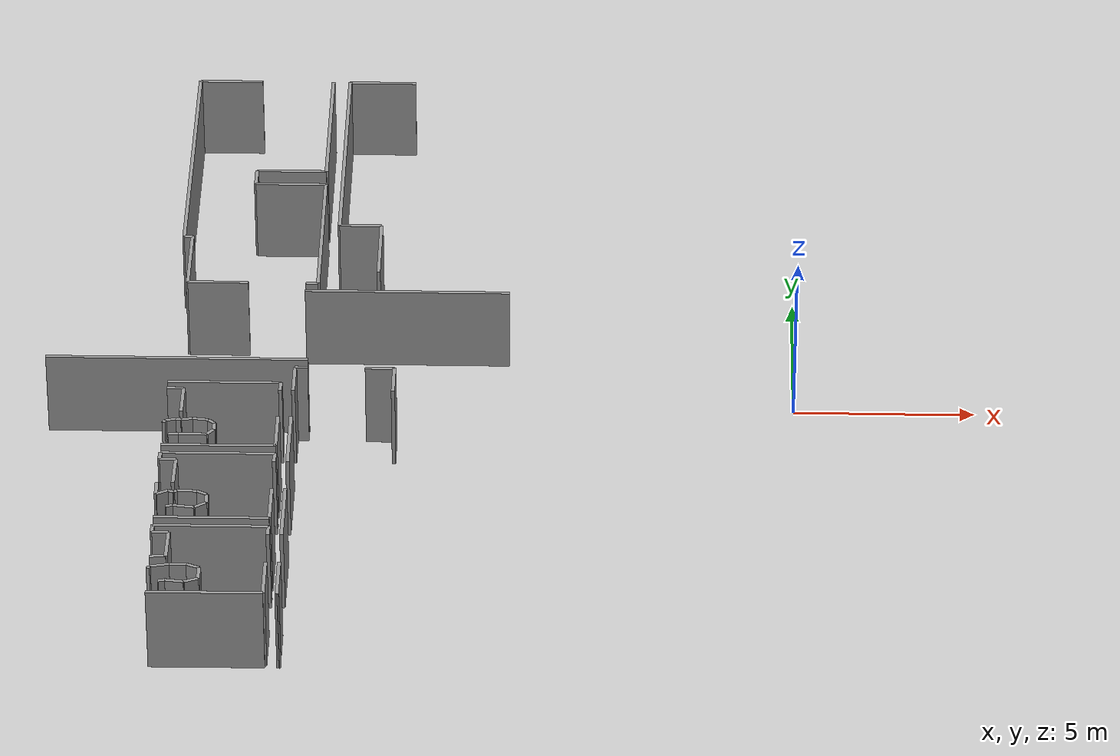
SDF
<sdf version="1.6">
 <world name="default">
  <model name="ground_plane">
   <static>1</static>
   <link name="link">
    <collision name="collision">
     <geometry><plane><normal>0 0 1</normal><size>100 100</size></plane></geometry>
     <surface><friction><ode><mu>100</mu><mu2>50</mu2></ode></friction></surface>
    </collision>
    <visual name="visual">
     <cast_shadows>0</cast_shadows>
     <geometry><plane><normal>0 0 1</normal><size>100 100</size></plane></geometry>
     <material>
      <script><uri>file://media/materials/scripts/gazebo.material</uri><name>Gazebo/Grey</name></script>
     </material>
    </visual>
   </link>
  </model>
  <model name="0510034691_Layout1">
   <static>1</static>
   <link name="Wall_56">
    <collision name="Wall_56_Collision">
     <geometry><box><size>5.70095833651 0.1 2.5</size></box></geometry>
     <pose>2.85047916826 0 1.25 0 0 0</pose>
    </collision>
    <visual name="Wall_56_Visual">
     <pose>2.85047916826 0 1.25 0 0 0</pose>
     <geometry><box><size>5.70095833651 0.1 2.5</size></box></geometry>
     <material>
      <script><uri>file://media/materials/scripts/gazebo.material</uri><name>Gazebo/Grey</name></script>
      <ambient>1 1 1 1</ambient>
     </material>
    </visual>
    <pose>42.838531737 -10.374437581 0 0 0 0.0</pose>
   </link>
   <link name="Wall_60">
    <collision name="Wall_60_Collision">
     <geometry><box><size>7.22578103155 0.1 2.5</size></box></geometry>
     <pose>3.61289051577 0 1.25 0 0 0</pose>
    </collision>
    <visual name="Wall_60_Visual">
     <pose>3.61289051577 0 1.25 0 0 0</pose>
     <geometry><box><size>7.22578103155 0.1 2.5</size></box></geometry>
     <material>
      <script><uri>file://media/materials/scripts/gazebo.material</uri><name>Gazebo/Grey</name></script>
      <ambient>1 1 1 1</ambient>
     </material>
    </visual>
    <pose>43.0745570553 -13.6054551463 0 0 0 3.14159265359</pose>
   </link>
   <link name="Wall_66">
    <collision name="Wall_66_Collision">
     <geometry><box><size>2.19311624596 0.1 2.5</size></box></geometry>
     <pose>1.09655812298 0 1.25 0 0 0</pose>
    </collision>
    <visual name="Wall_66_Visual">
     <pose>1.09655812298 0 1.25 0 0 0</pose>
     <geometry><box><size>2.19311624596 0.1 2.5</size></box></geometry>
     <material>
      <script><uri>file://media/materials/scripts/gazebo.material</uri><name>Gazebo/Grey</name></script>
      <ambient>1 1 1 1</ambient>
     </material>
    </visual>
    <pose>39.5428201022 -10.0233864613 0 0 0 1.57079632679</pose>
   </link>
   <link name="Wall_67">
    <collision name="Wall_67_Collision">
     <geometry><box><size>0.22941610107 0.1 2.5</size></box></geometry>
     <pose>0.114708050535 0 1.25 0 0 0</pose>
    </collision>
    <visual name="Wall_67_Visual">
     <pose>0.114708050535 0 1.25 0 0 0</pose>
     <geometry><box><size>0.22941610107 0.1 2.5</size></box></geometry>
     <material>
      <script><uri>file://media/materials/scripts/gazebo.material</uri><name>Gazebo/Grey</name></script>
      <ambient>1 1 1 1</ambient>
     </material>
    </visual>
    <pose>39.5428201022 -7.83027021531 0 0 0 3.14159265359</pose>
   </link>
   <link name="Wall_68">
    <collision name="Wall_68_Collision">
     <geometry><box><size>7.81056966369 0.1 2.5</size></box></geometry>
     <pose>3.90528483185 0 1.25 0 0 0</pose>
    </collision>
    <visual name="Wall_68_Visual">
     <pose>3.90528483185 0 1.25 0 0 0</pose>
     <geometry><box><size>7.81056966369 0.1 2.5</size></box></geometry>
     <material>
      <script><uri>file://media/materials/scripts/gazebo.material</uri><name>Gazebo/Grey</name></script>
      <ambient>1 1 1 1</ambient>
     </material>
    </visual>
    <pose>39.3134040011 -7.83027021531 0 0 0 1.57079632679</pose>
   </link>
   <link name="Wall_69">
    <collision name="Wall_69_Collision">
     <geometry><box><size>1.81143394596 0.1 2.5</size></box></geometry>
     <pose>0.905716972978 0 1.25 0 0 0</pose>
    </collision>
    <visual name="Wall_69_Visual">
     <pose>0.905716972978 0 1.25 0 0 0</pose>
     <geometry><box><size>1.81143394596 0.1 2.5</size></box></geometry>
     <material>
      <script><uri>file://media/materials/scripts/gazebo.material</uri><name>Gazebo/Grey</name></script>
      <ambient>1 1 1 1</ambient>
     </material>
    </visual>
    <pose>39.3134040011 -0.0197005516154 0 0 0 0.0</pose>
   </link>
   <link name="Wall_70">
    <collision name="Wall_70_Collision">
     <geometry><box><size>4.53061847022 0.1 2.5</size></box></geometry>
     <pose>2.26530923511 0 1.25 0 0 0</pose>
    </collision>
    <visual name="Wall_70_Visual">
     <pose>2.26530923511 0 1.25 0 0 0</pose>
     <geometry><box><size>4.53061847022 0.1 2.5</size></box></geometry>
     <material>
      <script><uri>file://media/materials/scripts/gazebo.material</uri><name>Gazebo/Grey</name></script>
      <ambient>1 1 1 1</ambient>
     </material>
    </visual>
    <pose>43.1769999237 -0.0197005516154 0 0 0 -1.57079632679</pose>
   </link>
   <link name="Wall_71">
    <collision name="Wall_71_Collision">
     <geometry><box><size>1.98060448918 0.1 2.5</size></box></geometry>
     <pose>0.990302244592 0 1.25 0 0 0</pose>
    </collision>
    <visual name="Wall_71_Visual">
     <pose>0.990302244592 0 1.25 0 0 0</pose>
     <geometry><box><size>1.98060448918 0.1 2.5</size></box></geometry>
     <material>
      <script><uri>file://media/materials/scripts/gazebo.material</uri><name>Gazebo/Grey</name></script>
      <ambient>1 1 1 1</ambient>
     </material>
    </visual>
    <pose>43.1769999237 -4.55031902184 0 0 0 3.14159265359</pose>
   </link>
   <link name="Wall_72">
    <collision name="Wall_72_Collision">
     <geometry><box><size>0.651897607972 0.1 2.5</size></box></geometry>
     <pose>0.325948803986 0 1.25 0 0 0</pose>
    </collision>
    <visual name="Wall_72_Visual">
     <pose>0.325948803986 0 1.25 0 0 0</pose>
     <geometry><box><size>0.651897607972 0.1 2.5</size></box></geometry>
     <material>
      <script><uri>file://media/materials/scripts/gazebo.material</uri><name>Gazebo/Grey</name></script>
      <ambient>1 1 1 1</ambient>
     </material>
    </visual>
    <pose>41.1963954346 -4.55031902184 0 0 0 -1.57079632679</pose>
   </link>
   <link name="Wall_73">
    <collision name="Wall_73_Collision">
     <geometry><box><size>1.98899311116 0.1 2.5</size></box></geometry>
     <pose>0.994496555581 0 1.25 0 0 0</pose>
    </collision>
    <visual name="Wall_73_Visual">
     <pose>0.994496555581 0 1.25 0 0 0</pose>
     <geometry><box><size>1.98899311116 0.1 2.5</size></box></geometry>
     <material>
      <script><uri>file://media/materials/scripts/gazebo.material</uri><name>Gazebo/Grey</name></script>
      <ambient>1 1 1 1</ambient>
     </material>
    </visual>
    <pose>41.1963954346 -5.20221662981 0 0 0 0.0</pose>
   </link>
   <link name="Wall_74">
    <collision name="Wall_74_Collision">
     <geometry><box><size>4.80922240016 0.1 2.5</size></box></geometry>
     <pose>2.40461120008 0 1.25 0 0 0</pose>
    </collision>
    <visual name="Wall_74_Visual">
     <pose>2.40461120008 0 1.25 0 0 0</pose>
     <geometry><box><size>4.80922240016 0.1 2.5</size></box></geometry>
     <material>
      <script><uri>file://media/materials/scripts/gazebo.material</uri><name>Gazebo/Grey</name></script>
      <ambient>1 1 1 1</ambient>
     </material>
    </visual>
    <pose>43.1853885457 -5.20221662981 0 0 0 -1.57079632679</pose>
   </link>
   <link name="Wall_75">
    <collision name="Wall_75_Collision">
     <geometry><box><size>0.339484989451 0.1 2.5</size></box></geometry>
     <pose>0.169742494725 0 1.25 0 0 0</pose>
    </collision>
    <visual name="Wall_75_Visual">
     <pose>0.169742494725 0 1.25 0 0 0</pose>
     <geometry><box><size>0.339484989451 0.1 2.5</size></box></geometry>
     <material>
      <script><uri>file://media/materials/scripts/gazebo.material</uri><name>Gazebo/Grey</name></script>
      <ambient>1 1 1 1</ambient>
     </material>
    </visual>
    <pose>43.1853885457 -10.01143903 0 0 0 3.14159265359</pose>
   </link>
   <link name="Wall_76">
    <collision name="Wall_76_Collision">
     <geometry><box><size>1.69339988343 0.1 2.5</size></box></geometry>
     <pose>0.846699941716 0 1.25 0 0 0</pose>
    </collision>
    <visual name="Wall_76_Visual">
     <pose>0.846699941716 0 1.25 0 0 0</pose>
     <geometry><box><size>1.69339988343 0.1 2.5</size></box></geometry>
     <material>
      <script><uri>file://media/materials/scripts/gazebo.material</uri><name>Gazebo/Grey</name></script>
      <ambient>1 1 1 1</ambient>
     </material>
    </visual>
    <pose>41.2361778388 -10.01143903 0 0 0 -3.13453730267</pose>
   </link>
   <link name="Wall_79">
    <collision name="Wall_79_Collision">
     <geometry><box><size>0.281947760479 0.1 2.5</size></box></geometry>
     <pose>0.140973880239 0 1.25 0 0 0</pose>
    </collision>
    <visual name="Wall_79_Visual">
     <pose>0.140973880239 0 1.25 0 0 0</pose>
     <geometry><box><size>0.281947760479 0.1 2.5</size></box></geometry>
     <material>
      <script><uri>file://media/materials/scripts/gazebo.material</uri><name>Gazebo/Grey</name></script>
      <ambient>1 1 1 1</ambient>
     </material>
    </visual>
    <pose>39.4377081268 -17.0616945016 0 0 0 -0.016680148091</pose>
   </link>
   <link name="Wall_80">
    <collision name="Wall_80_Collision">
     <geometry><box><size>0.774101299165 0.1 2.5</size></box></geometry>
     <pose>0.387050649583 0 1.25 0 0 0</pose>
    </collision>
    <visual name="Wall_80_Visual">
     <pose>0.387050649583 0 1.25 0 0 0</pose>
     <geometry><box><size>0.774101299165 0.1 2.5</size></box></geometry>
     <material>
      <script><uri>file://media/materials/scripts/gazebo.material</uri><name>Gazebo/Grey</name></script>
      <ambient>1 1 1 1</ambient>
     </material>
    </visual>
    <pose>39.7196166654 -17.066397214 0 0 0 -0.0124788267691</pose>
   </link>
   <link name="Wall_81">
    <collision name="Wall_81_Collision">
     <geometry><box><size>0.271600207622 0.1 2.5</size></box></geometry>
     <pose>0.135800103811 0 1.25 0 0 0</pose>
    </collision>
    <visual name="Wall_81_Visual">
     <pose>0.135800103811 0 1.25 0 0 0</pose>
     <geometry><box><size>0.271600207622 0.1 2.5</size></box></geometry>
     <material>
      <script><uri>file://media/materials/scripts/gazebo.material</uri><name>Gazebo/Grey</name></script>
      <ambient>1 1 1 1</ambient>
     </material>
    </visual>
    <pose>40.4936576934 -17.0760568393 0 0 0 0.885165594328</pose>
   </link>
   <link name="Wall_82">
    <collision name="Wall_82_Collision">
     <geometry><box><size>0.281949909073 0.1 2.5</size></box></geometry>
     <pose>0.140974954536 0 1.25 0 0 0</pose>
    </collision>
    <visual name="Wall_82_Visual">
     <pose>0.140974954536 0 1.25 0 0 0</pose>
     <geometry><box><size>0.281949909073 0.1 2.5</size></box></geometry>
     <material>
      <script><uri>file://media/materials/scripts/gazebo.material</uri><name>Gazebo/Grey</name></script>
      <ambient>1 1 1 1</ambient>
     </material>
    </visual>
    <pose>40.6656244439 -16.8658328885 0 0 0 1.55366545092</pose>
   </link>
   <link name="Wall_83">
    <collision name="Wall_83_Collision">
     <geometry><box><size>0.236930907726 0.1 2.5</size></box></geometry>
     <pose>0.118465453863 0 1.25 0 0 0</pose>
    </collision>
    <visual name="Wall_83_Visual">
     <pose>0.118465453863 0 1.25 0 0 0</pose>
     <geometry><box><size>0.236930907726 0.1 2.5</size></box></geometry>
     <material>
      <script><uri>file://media/materials/scripts/gazebo.material</uri><name>Gazebo/Grey</name></script>
      <ambient>1 1 1 1</ambient>
     </material>
    </visual>
    <pose>40.6704542566 -16.5839243499 0 0 0 2.41312379024</pose>
   </link>
   <link name="Wall_84">
    <collision name="Wall_84_Collision">
     <geometry><box><size>0.433910503499 0.1 2.5</size></box></geometry>
     <pose>0.216955251749 0 1.25 0 0 0</pose>
    </collision>
    <visual name="Wall_84_Visual">
     <pose>0.216955251749 0 1.25 0 0 0</pose>
     <geometry><box><size>0.433910503499 0.1 2.5</size></box></geometry>
     <material>
      <script><uri>file://media/materials/scripts/gazebo.material</uri><name>Gazebo/Grey</name></script>
      <ambient>1 1 1 1</ambient>
     </material>
    </visual>
    <pose>40.4936576934 -16.4261928366 0 0 0 3.00909919105</pose>
   </link>
   <link name="Wall_85">
    <collision name="Wall_85_Collision">
     <geometry><box><size>0.313026007147 0.1 2.5</size></box></geometry>
     <pose>0.156513003573 0 1.25 0 0 0</pose>
    </collision>
    <visual name="Wall_85_Visual">
     <pose>0.156513003573 0 1.25 0 0 0</pose>
     <geometry><box><size>0.313026007147 0.1 2.5</size></box></geometry>
     <material>
      <script><uri>file://media/materials/scripts/gazebo.material</uri><name>Gazebo/Grey</name></script>
      <ambient>1 1 1 1</ambient>
     </material>
    </visual>
    <pose>40.0635501665 -16.3688705864 0 0 0 -2.92635890956</pose>
   </link>
   <link name="Wall_86">
    <collision name="Wall_86_Collision">
     <geometry><box><size>0.147090728379 0.1 2.5</size></box></geometry>
     <pose>0.0735453641894 0 1.25 0 0 0</pose>
    </collision>
    <visual name="Wall_86_Visual">
     <pose>0.0735453641894 0 1.25 0 0 0</pose>
     <geometry><box><size>0.147090728379 0.1 2.5</size></box></geometry>
     <material>
      <script><uri>file://media/materials/scripts/gazebo.material</uri><name>Gazebo/Grey</name></script>
      <ambient>1 1 1 1</ambient>
     </material>
    </visual>
    <pose>39.7577467653 -16.4357253616 0 0 0 2.91233267061</pose>
   </link>
   <link name="Wall_87">
    <collision name="Wall_87_Collision">
     <geometry><box><size>0.295563127284 0.1 2.5</size></box></geometry>
     <pose>0.147781563642 0 1.25 0 0 0</pose>
    </collision>
    <visual name="Wall_87_Visual">
     <pose>0.147781563642 0 1.25 0 0 0</pose>
     <geometry><box><size>0.295563127284 0.1 2.5</size></box></geometry>
     <material>
      <script><uri>file://media/materials/scripts/gazebo.material</uri><name>Gazebo/Grey</name></script>
      <ambient>1 1 1 1</ambient>
     </material>
    </visual>
    <pose>39.61450469 -16.402297974 0 0 0 -2.89661399046</pose>
   </link>
   <link name="Wall_88">
    <collision name="Wall_88_Collision">
     <geometry><box><size>0.102563904907 0.1 2.5</size></box></geometry>
     <pose>0.0512819524537 0 1.25 0 0 0</pose>
    </collision>
    <visual name="Wall_88_Visual">
     <pose>0.0512819524537 0 1.25 0 0 0</pose>
     <geometry><box><size>0.102563904907 0.1 2.5</size></box></geometry>
     <material>
      <script><uri>file://media/materials/scripts/gazebo.material</uri><name>Gazebo/Grey</name></script>
      <ambient>1 1 1 1</ambient>
     </material>
    </visual>
    <pose>39.3277663387 -16.4739825618 0 0 0 -2.05550512273</pose>
   </link>
   <link name="Wall_91">
    <collision name="Wall_91_Collision">
     <geometry><box><size>1.04642760881 0.1 2.5</size></box></geometry>
     <pose>0.523213804405 0 1.25 0 0 0</pose>
    </collision>
    <visual name="Wall_91_Visual">
     <pose>0.523213804405 0 1.25 0 0 0</pose>
     <geometry><box><size>1.04642760881 0.1 2.5</size></box></geometry>
     <material>
      <script><uri>file://media/materials/scripts/gazebo.material</uri><name>Gazebo/Grey</name></script>
      <ambient>1 1 1 1</ambient>
     </material>
    </visual>
    <pose>39.7291491904 -16.043875035 0 0 0 1.56630224798</pose>
   </link>
   <link name="Wall_92">
    <collision name="Wall_92_Collision">
     <geometry><box><size>0.453875289153 0.1 2.5</size></box></geometry>
     <pose>0.226937644577 0 1.25 0 0 0</pose>
    </collision>
    <visual name="Wall_92_Visual">
     <pose>0.226937644577 0 1.25 0 0 0</pose>
     <geometry><box><size>0.453875289153 0.1 2.5</size></box></geometry>
     <material>
      <script><uri>file://media/materials/scripts/gazebo.material</uri><name>Gazebo/Grey</name></script>
      <ambient>1 1 1 1</ambient>
     </material>
    </visual>
    <pose>39.7338519027 -14.9974579933 0 0 0 3.14159265359</pose>
   </link>
   <link name="Wall_94">
    <collision name="Wall_94_Collision">
     <geometry><box><size>3.09629121228 0.1 2.5</size></box></geometry>
     <pose>1.54814560614 0 1.25 0 0 0</pose>
    </collision>
    <visual name="Wall_94_Visual">
     <pose>1.54814560614 0 1.25 0 0 0</pose>
     <geometry><box><size>3.09629121228 0.1 2.5</size></box></geometry>
     <material>
      <script><uri>file://media/materials/scripts/gazebo.material</uri><name>Gazebo/Grey</name></script>
      <ambient>1 1 1 1</ambient>
     </material>
    </visual>
    <pose>39.2799766135 -14.6964844048 0 0 0 0.0</pose>
   </link>
   <link name="Wall_95">
    <collision name="Wall_95_Collision">
     <geometry><box><size>0.334528076464 0.1 2.5</size></box></geometry>
     <pose>0.167264038232 0 1.25 0 0 0</pose>
    </collision>
    <visual name="Wall_95_Visual">
     <pose>0.167264038232 0 1.25 0 0 0</pose>
     <geometry><box><size>0.334528076464 0.1 2.5</size></box></geometry>
     <material>
      <script><uri>file://media/materials/scripts/gazebo.material</uri><name>Gazebo/Grey</name></script>
      <ambient>1 1 1 1</ambient>
     </material>
    </visual>
    <pose>42.3762678258 -14.6964844048 0 0 0 -1.57079632679</pose>
   </link>
   <link name="Wall_96">
    <collision name="Wall_96_Collision">
     <geometry><box><size>1.31663234958 0.1 2.5</size></box></geometry>
     <pose>0.658316174788 0 1.25 0 0 0</pose>
    </collision>
    <visual name="Wall_96_Visual">
     <pose>0.658316174788 0 1.25 0 0 0</pose>
     <geometry><box><size>1.31663234958 0.1 2.5</size></box></geometry>
     <material>
      <script><uri>file://media/materials/scripts/gazebo.material</uri><name>Gazebo/Grey</name></script>
      <ambient>1 1 1 1</ambient>
     </material>
    </visual>
    <pose>42.3762678258 -16.2276621165 0 0 0 -1.57079632679</pose>
   </link>
   <link name="Wall_97">
    <collision name="Wall_97_Collision">
     <geometry><box><size>3.10117962837 0.1 2.5</size></box></geometry>
     <pose>1.55058981419 0 1.25 0 0 0</pose>
    </collision>
    <visual name="Wall_97_Visual">
     <pose>1.55058981419 0 1.25 0 0 0</pose>
     <geometry><box><size>3.10117962837 0.1 2.5</size></box></geometry>
     <material>
      <script><uri>file://media/materials/scripts/gazebo.material</uri><name>Gazebo/Grey</name></script>
      <ambient>1 1 1 1</ambient>
     </material>
    </visual>
    <pose>42.3762678258 -17.5442944661 0 0 0 -3.1354449381</pose>
   </link>
   <link name="Wall_100">
    <collision name="Wall_100_Collision">
     <geometry><box><size>0.196831188568 0.1 2.5</size></box></geometry>
     <pose>0.0984155942839 0 1.25 0 0 0</pose>
    </collision>
    <visual name="Wall_100_Visual">
     <pose>0.0984155942839 0 1.25 0 0 0</pose>
     <geometry><box><size>0.196831188568 0.1 2.5</size></box></geometry>
     <material>
      <script><uri>file://media/materials/scripts/gazebo.material</uri><name>Gazebo/Grey</name></script>
      <ambient>1 1 1 1</ambient>
     </material>
    </visual>
    <pose>39.5706550751 -20.2868654516 0 0 0 0.237931011607</pose>
   </link>
   <link name="Wall_101">
    <collision name="Wall_101_Collision">
     <geometry><box><size>0.581813543651 0.1 2.5</size></box></geometry>
     <pose>0.290906771825 0 1.25 0 0 0</pose>
    </collision>
    <visual name="Wall_101_Visual">
     <pose>0.290906771825 0 1.25 0 0 0</pose>
     <geometry><box><size>0.581813543651 0.1 2.5</size></box></geometry>
     <material>
      <script><uri>file://media/materials/scripts/gazebo.material</uri><name>Gazebo/Grey</name></script>
      <ambient>1 1 1 1</ambient>
     </material>
    </visual>
    <pose>39.7619410763 -20.24047383 0 0 0 -0.136521426702</pose>
   </link>
   <link name="Wall_102">
    <collision name="Wall_102_Collision">
     <geometry><box><size>0.370527118994 0.1 2.5</size></box></geometry>
     <pose>0.185263559497 0 1.25 0 0 0</pose>
    </collision>
    <visual name="Wall_102_Visual">
     <pose>0.185263559497 0 1.25 0 0 0</pose>
     <geometry><box><size>0.370527118994 0.1 2.5</size></box></geometry>
     <material>
      <script><uri>file://media/materials/scripts/gazebo.material</uri><name>Gazebo/Grey</name></script>
      <ambient>1 1 1 1</ambient>
     </material>
    </visual>
    <pose>40.3383410865 -20.3196573375 0 0 0 0.585909561223</pose>
   </link>
   <link name="Wall_103">
    <collision name="Wall_103_Collision">
     <geometry><box><size>0.360583644729 0.1 2.5</size></box></geometry>
     <pose>0.180291822365 0 1.25 0 0 0</pose>
    </collision>
    <visual name="Wall_103_Visual">
     <pose>0.180291822365 0 1.25 0 0 0</pose>
     <geometry><box><size>0.360583644729 0.1 2.5</size></box></geometry>
     <material>
      <script><uri>file://media/materials/scripts/gazebo.material</uri><name>Gazebo/Grey</name></script>
      <ambient>1 1 1 1</ambient>
     </material>
    </visual>
    <pose>40.6470677953 -20.1147716007 0 0 0 1.57079632679</pose>
   </link>
   <link name="Wall_104">
    <collision name="Wall_104_Collision">
     <geometry><box><size>0.309243781943 0.1 2.5</size></box></geometry>
     <pose>0.154621890971 0 1.25 0 0 0</pose>
    </collision>
    <visual name="Wall_104_Visual">
     <pose>0.154621890971 0 1.25 0 0 0</pose>
     <geometry><box><size>0.309243781943 0.1 2.5</size></box></geometry>
     <material>
      <script><uri>file://media/materials/scripts/gazebo.material</uri><name>Gazebo/Grey</name></script>
      <ambient>1 1 1 1</ambient>
     </material>
    </visual>
    <pose>40.6470677953 -19.754187956 0 0 0 2.65441564994</pose>
   </link>
   <link name="Wall_105">
    <collision name="Wall_105_Collision">
     <geometry><box><size>0.53825380865 0.1 2.5</size></box></geometry>
     <pose>0.269126904325 0 1.25 0 0 0</pose>
    </collision>
    <visual name="Wall_105_Visual">
     <pose>0.269126904325 0 1.25 0 0 0</pose>
     <geometry><box><size>0.53825380865 0.1 2.5</size></box></geometry>
     <material>
      <script><uri>file://media/materials/scripts/gazebo.material</uri><name>Gazebo/Grey</name></script>
      <ambient>1 1 1 1</ambient>
     </material>
    </visual>
    <pose>40.3738020794 -19.6094206767 0 0 0 3.1212836843</pose>
   </link>
   <link name="Wall_106">
    <collision name="Wall_106_Collision">
     <geometry><box><size>0.107082464279 0.1 2.5</size></box></geometry>
     <pose>0.0535412321396 0 1.25 0 0 0</pose>
    </collision>
    <visual name="Wall_106_Visual">
     <pose>0.0535412321396 0 1.25 0 0 0</pose>
     <geometry><box><size>0.107082464279 0.1 2.5</size></box></geometry>
     <material>
      <script><uri>file://media/materials/scripts/gazebo.material</uri><name>Gazebo/Grey</name></script>
      <ambient>1 1 1 1</ambient>
     </material>
    </visual>
    <pose>39.8356592694 -19.598490048 0 0 0 -2.4824233114</pose>
   </link>
   <link name="Wall_107">
    <collision name="Wall_107_Collision">
     <geometry><box><size>0.160415827255 0.1 2.5</size></box></geometry>
     <pose>0.0802079136274 0 1.25 0 0 0</pose>
    </collision>
    <visual name="Wall_107_Visual">
     <pose>0.0802079136274 0 1.25 0 0 0</pose>
     <geometry><box><size>0.160415827255 0.1 2.5</size></box></geometry>
     <material>
      <script><uri>file://media/materials/scripts/gazebo.material</uri><name>Gazebo/Grey</name></script>
      <ambient>1 1 1 1</ambient>
     </material>
    </visual>
    <pose>39.7510104476 -19.6640738199 0 0 0 2.73857352429</pose>
   </link>
   <link name="Wall_108">
    <collision name="Wall_108_Collision">
     <geometry><box><size>0.356808282887 0.1 2.5</size></box></geometry>
     <pose>0.178404141443 0 1.25 0 0 0</pose>
    </collision>
    <visual name="Wall_108_Visual">
     <pose>0.178404141443 0 1.25 0 0 0</pose>
     <geometry><box><size>0.356808282887 0.1 2.5</size></box></geometry>
     <material>
      <script><uri>file://media/materials/scripts/gazebo.material</uri><name>Gazebo/Grey</name></script>
      <ambient>1 1 1 1</ambient>
     </material>
    </visual>
    <pose>39.603446961 -19.601159155 0 0 0 -2.69833737357</pose>
   </link>
   <link name="Wall_109">
    <collision name="Wall_109_Collision">
     <geometry><box><size>0.497224365191 0.1 2.5</size></box></geometry>
     <pose>0.248612182596 0 1.25 0 0 0</pose>
    </collision>
    <visual name="Wall_109_Visual">
     <pose>0.248612182596 0 1.25 0 0 0</pose>
     <geometry><box><size>0.497224365191 0.1 2.5</size></box></geometry>
     <material>
      <script><uri>file://media/materials/scripts/gazebo.material</uri><name>Gazebo/Grey</name></script>
      <ambient>1 1 1 1</ambient>
     </material>
    </visual>
    <pose>39.2811205165 -19.754187956 0 0 0 1.57641998939</pose>
   </link>
   <link name="Wall_111">
    <collision name="Wall_111_Collision">
     <geometry><box><size>1.04641840015 0.1 2.5</size></box></geometry>
     <pose>0.523209200074 0 1.25 0 0 0</pose>
    </collision>
    <visual name="Wall_111_Visual">
     <pose>0.523209200074 0 1.25 0 0 0</pose>
     <geometry><box><size>1.04641840015 0.1 2.5</size></box></geometry>
     <material>
      <script><uri>file://media/materials/scripts/gazebo.material</uri><name>Gazebo/Grey</name></script>
      <ambient>1 1 1 1</ambient>
     </material>
    </visual>
    <pose>39.7044917258 -19.2569714533 0 0 0 1.55512705539</pose>
   </link>
   <link name="Wall_112">
    <collision name="Wall_112_Collision">
     <geometry><box><size>0.439902974288 0.1 2.5</size></box></geometry>
     <pose>0.219951487144 0 1.25 0 0 0</pose>
    </collision>
    <visual name="Wall_112_Visual">
     <pose>0.219951487144 0 1.25 0 0 0</pose>
     <geometry><box><size>0.439902974288 0.1 2.5</size></box></geometry>
     <material>
      <script><uri>file://media/materials/scripts/gazebo.material</uri><name>Gazebo/Grey</name></script>
      <ambient>1 1 1 1</ambient>
     </material>
    </visual>
    <pose>39.7208876687 -18.210681512 0 0 0 3.1167422789</pose>
   </link>
   <link name="Wall_113">
    <collision name="Wall_113_Collision">
     <geometry><box><size>0.281453205552 0.1 2.5</size></box></geometry>
     <pose>0.140726602776 0 1.25 0 0 0</pose>
    </collision>
    <visual name="Wall_113_Visual">
     <pose>0.140726602776 0 1.25 0 0 0</pose>
     <geometry><box><size>0.281453205552 0.1 2.5</size></box></geometry>
     <material>
      <script><uri>file://media/materials/scripts/gazebo.material</uri><name>Gazebo/Grey</name></script>
      <ambient>1 1 1 1</ambient>
     </material>
    </visual>
    <pose>39.2811205165 -18.1997508833 0 0 0 1.55137690739</pose>
   </link>
   <link name="Wall_114">
    <collision name="Wall_114_Collision">
     <geometry><box><size>3.08435484535 0.1 2.5</size></box></geometry>
     <pose>1.54217742267 0 1.25 0 0 0</pose>
    </collision>
    <visual name="Wall_114_Visual">
     <pose>1.54217742267 0 1.25 0 0 0</pose>
     <geometry><box><size>3.08435484535 0.1 2.5</size></box></geometry>
     <material>
      <script><uri>file://media/materials/scripts/gazebo.material</uri><name>Gazebo/Grey</name></script>
      <ambient>1 1 1 1</ambient>
     </material>
    </visual>
    <pose>39.2865858309 -17.9183507461 0 0 0 0.00267852822979</pose>
   </link>
   <link name="Wall_115">
    <collision name="Wall_115_Collision">
     <geometry><box><size>0.346983909098 0.1 2.5</size></box></geometry>
     <pose>0.173491954549 0 1.25 0 0 0</pose>
    </collision>
    <visual name="Wall_115_Visual">
     <pose>0.173491954549 0 1.25 0 0 0</pose>
     <geometry><box><size>0.346983909098 0.1 2.5</size></box></geometry>
     <material>
      <script><uri>file://media/materials/scripts/gazebo.material</uri><name>Gazebo/Grey</name></script>
      <ambient>1 1 1 1</ambient>
     </material>
    </visual>
    <pose>42.3709296118 -17.9100892244 0 0 0 -1.57079632679</pose>
   </link>
   <link name="Wall_116">
    <collision name="Wall_116_Collision">
     <geometry><box><size>1.29464399197 0.1 2.5</size></box></geometry>
     <pose>0.647321995984 0 1.25 0 0 0</pose>
    </collision>
    <visual name="Wall_116_Visual">
     <pose>0.647321995984 0 1.25 0 0 0</pose>
     <geometry><box><size>1.29464399197 0.1 2.5</size></box></geometry>
     <material>
      <script><uri>file://media/materials/scripts/gazebo.material</uri><name>Gazebo/Grey</name></script>
      <ambient>1 1 1 1</ambient>
     </material>
    </visual>
    <pose>42.3709296118 -19.4549937721 0 0 0 -1.57079632679</pose>
   </link>
   <link name="Wall_117">
    <collision name="Wall_117_Collision">
     <geometry><box><size>3.09808647903 0.1 2.5</size></box></geometry>
     <pose>1.54904323951 0 1.25 0 0 0</pose>
    </collision>
    <visual name="Wall_117_Visual">
     <pose>1.54904323951 0 1.25 0 0 0</pose>
     <geometry><box><size>3.09808647903 0.1 2.5</size></box></geometry>
     <material>
      <script><uri>file://media/materials/scripts/gazebo.material</uri><name>Gazebo/Grey</name></script>
      <ambient>1 1 1 1</ambient>
     </material>
    </visual>
    <pose>42.3709296118 -20.7496377641 0 0 0 -3.13839266451</pose>
   </link>
   <link name="Wall_120">
    <collision name="Wall_120_Collision">
     <geometry><box><size>0.188391679075 0.1 2.5</size></box></geometry>
     <pose>0.0941958395377 0 1.25 0 0 0</pose>
    </collision>
    <visual name="Wall_120_Visual">
     <pose>0.0941958395377 0 1.25 0 0 0</pose>
     <geometry><box><size>0.188391679075 0.1 2.5</size></box></geometry>
     <material>
      <script><uri>file://media/materials/scripts/gazebo.material</uri><name>Gazebo/Grey</name></script>
      <ambient>1 1 1 1</ambient>
     </material>
    </visual>
    <pose>39.5729428811 -23.5175017159 0 0 0 0.266252049151</pose>
   </link>
   <link name="Wall_121">
    <collision name="Wall_121_Collision">
     <geometry><box><size>0.506377999247 0.1 2.5</size></box></geometry>
     <pose>0.253188999623 0 1.25 0 0 0</pose>
    </collision>
    <visual name="Wall_121_Visual">
     <pose>0.253188999623 0 1.25 0 0 0</pose>
     <geometry><box><size>0.506377999247 0.1 2.5</size></box></geometry>
     <material>
      <script><uri>file://media/materials/scripts/gazebo.material</uri><name>Gazebo/Grey</name></script>
      <ambient>1 1 1 1</ambient>
     </material>
    </visual>
    <pose>39.7546963573 -23.467932586 0 0 0 -0.130892883959</pose>
   </link>
   <link name="Wall_122">
    <collision name="Wall_122_Collision">
     <geometry><box><size>0.396237647691 0.1 2.5</size></box></geometry>
     <pose>0.198118823845 0 1.25 0 0 0</pose>
    </collision>
    <visual name="Wall_122_Visual">
     <pose>0.198118823845 0 1.25 0 0 0</pose>
     <geometry><box><size>0.396237647691 0.1 2.5</size></box></geometry>
     <material>
      <script><uri>file://media/materials/scripts/gazebo.material</uri><name>Gazebo/Grey</name></script>
      <ambient>1 1 1 1</ambient>
     </material>
    </visual>
    <pose>40.2567426727 -23.5340247591 0 0 0 0.367818668145</pose>
   </link>
   <link name="Wall_123">
    <collision name="Wall_123_Collision">
     <geometry><box><size>0.462772312463 0.1 2.5</size></box></geometry>
     <pose>0.231386156232 0 1.25 0 0 0</pose>
    </collision>
    <visual name="Wall_123_Visual">
     <pose>0.231386156232 0 1.25 0 0 0</pose>
     <geometry><box><size>0.462772312463 0.1 2.5</size></box></geometry>
     <material>
      <script><uri>file://media/materials/scripts/gazebo.material</uri><name>Gazebo/Grey</name></script>
      <ambient>1 1 1 1</ambient>
     </material>
    </visual>
    <pose>40.6264775414 -23.3915452858 0 0 0 1.57079632679</pose>
   </link>
   <link name="Wall_124">
    <collision name="Wall_124_Collision">
     <geometry><box><size>0.366685011408 0.1 2.5</size></box></geometry>
     <pose>0.183342505704 0 1.25 0 0 0</pose>
    </collision>
    <visual name="Wall_124_Visual">
     <pose>0.183342505704 0 1.25 0 0 0</pose>
     <geometry><box><size>0.366685011408 0.1 2.5</size></box></geometry>
     <material>
      <script><uri>file://media/materials/scripts/gazebo.material</uri><name>Gazebo/Grey</name></script>
      <ambient>1 1 1 1</ambient>
     </material>
    </visual>
    <pose>40.6264775414 -22.9287729734 0 0 0 2.74853463441</pose>
   </link>
   <link name="Wall_125">
    <collision name="Wall_125_Collision">
     <geometry><box><size>0.460812769997 0.1 2.5</size></box></geometry>
     <pose>0.230406384999 0 1.25 0 0 0</pose>
    </collision>
    <visual name="Wall_125_Visual">
     <pose>0.230406384999 0 1.25 0 0 0</pose>
     <geometry><box><size>0.460812769997 0.1 2.5</size></box></geometry>
     <material>
      <script><uri>file://media/materials/scripts/gazebo.material</uri><name>Gazebo/Grey</name></script>
      <ambient>1 1 1 1</ambient>
     </material>
    </visual>
    <pose>40.2877551539 -22.7883271054 0 0 0 -3.12366354048</pose>
   </link>
   <link name="Wall_126">
    <collision name="Wall_126_Collision">
     <geometry><box><size>0.527087165073 0.1 2.5</size></box></geometry>
     <pose>0.263543582537 0 1.25 0 0 0</pose>
    </collision>
    <visual name="Wall_126_Visual">
     <pose>0.263543582537 0 1.25 0 0 0</pose>
     <geometry><box><size>0.527087165073 0.1 2.5</size></box></geometry>
     <material>
      <script><uri>file://media/materials/scripts/gazebo.material</uri><name>Gazebo/Grey</name></script>
      <ambient>1 1 1 1</ambient>
     </material>
    </visual>
    <pose>39.8270164468 -22.7965886271 0 0 0 -2.96022939543</pose>
   </link>
   <link name="Wall_127">
    <collision name="Wall_127_Collision">
     <geometry><box><size>0.0955179931983 0.1 2.5</size></box></geometry>
     <pose>0.0477589965991 0 1.25 0 0 0</pose>
    </collision>
    <visual name="Wall_127_Visual">
     <pose>0.0477589965991 0 1.25 0 0 0</pose>
     <geometry><box><size>0.0955179931983 0.1 2.5</size></box></geometry>
     <material>
      <script><uri>file://media/materials/scripts/gazebo.material</uri><name>Gazebo/Grey</name></script>
      <ambient>1 1 1 1</ambient>
     </material>
    </visual>
    <pose>39.3085741885 -22.8916596761 0 0 0 -1.94685499417</pose>
   </link>
   <link name="Wall_129">
    <collision name="Wall_129_Collision">
     <geometry><box><size>0.434389631261 0.1 2.5</size></box></geometry>
     <pose>0.217194815631 0 1.25 0 0 0</pose>
    </collision>
    <visual name="Wall_129_Visual">
     <pose>0.217194815631 0 1.25 0 0 0</pose>
     <geometry><box><size>0.434389631261 0.1 2.5</size></box></geometry>
     <material>
      <script><uri>file://media/materials/scripts/gazebo.material</uri><name>Gazebo/Grey</name></script>
      <ambient>1 1 1 1</ambient>
     </material>
    </visual>
    <pose>39.2817560182 -22.4681613666 0 0 0 0.052398520045</pose>
   </link>
   <link name="Wall_130">
    <collision name="Wall_130_Collision">
     <geometry><box><size>1.02882396758 0.1 2.5</size></box></geometry>
     <pose>0.514411983791 0 1.25 0 0 0</pose>
    </collision>
    <visual name="Wall_130_Visual">
     <pose>0.514411983791 0 1.25 0 0 0</pose>
     <geometry><box><size>1.02882396758 0.1 2.5</size></box></geometry>
     <material>
      <script><uri>file://media/materials/scripts/gazebo.material</uri><name>Gazebo/Grey</name></script>
      <ambient>1 1 1 1</ambient>
     </material>
    </visual>
    <pose>39.7155494547 -22.445410407 0 0 0 1.55881271465</pose>
   </link>
   <link name="Wall_131">
    <collision name="Wall_131_Collision">
     <geometry><box><size>0.444132231643 0.1 2.5</size></box></geometry>
     <pose>0.222066115821 0 1.25 0 0 0</pose>
    </collision>
    <visual name="Wall_131_Visual">
     <pose>0.222066115821 0 1.25 0 0 0</pose>
     <geometry><box><size>0.444132231643 0.1 2.5</size></box></geometry>
     <material>
      <script><uri>file://media/materials/scripts/gazebo.material</uri><name>Gazebo/Grey</name></script>
      <ambient>1 1 1 1</ambient>
     </material>
    </visual>
    <pose>39.727878187 -21.4166603117 0 0 0 3.12756953165</pose>
   </link>
   <link name="Wall_132">
    <collision name="Wall_132_Collision">
     <geometry><box><size>0.2932275201 0.1 2.5</size></box></geometry>
     <pose>0.14661376005 0 1.25 0 0 0</pose>
    </collision>
    <visual name="Wall_132_Visual">
     <pose>0.14661376005 0 1.25 0 0 0</pose>
     <geometry><box><size>0.2932275201 0.1 2.5</size></box></geometry>
     <material>
      <script><uri>file://media/materials/scripts/gazebo.material</uri><name>Gazebo/Grey</name></script>
      <ambient>1 1 1 1</ambient>
     </material>
    </visual>
    <pose>39.2837896235 -21.4104323953 0 0 0 1.56386102403</pose>
   </link>
   <link name="Wall_133">
    <collision name="Wall_133_Collision">
     <geometry><box><size>3.08205597499 0.1 2.5</size></box></geometry>
     <pose>1.54102798749 0 1.25 0 0 0</pose>
    </collision>
    <visual name="Wall_133_Visual">
     <pose>1.54102798749 0 1.25 0 0 0</pose>
     <geometry><box><size>3.08205597499 0.1 2.5</size></box></geometry>
     <material>
      <script><uri>file://media/materials/scripts/gazebo.material</uri><name>Gazebo/Grey</name></script>
      <ambient>1 1 1 1</ambient>
     </material>
    </visual>
    <pose>39.2858232289 -21.1172119271 0 0 0 0.0</pose>
   </link>
   <link name="Wall_134">
    <collision name="Wall_134_Collision">
     <geometry><box><size>0.351178220087 0.1 2.5</size></box></geometry>
     <pose>0.175589110043 0 1.25 0 0 0</pose>
    </collision>
    <visual name="Wall_134_Visual">
     <pose>0.175589110043 0 1.25 0 0 0</pose>
     <geometry><box><size>0.351178220087 0.1 2.5</size></box></geometry>
     <material>
      <script><uri>file://media/materials/scripts/gazebo.material</uri><name>Gazebo/Grey</name></script>
      <ambient>1 1 1 1</ambient>
     </material>
    </visual>
    <pose>42.3678792038 -21.1172119271 0 0 0 -1.57079632679</pose>
   </link>
   <link name="Wall_135">
    <collision name="Wall_135_Collision">
     <geometry><box><size>1.30532041994 0.1 2.5</size></box></geometry>
     <pose>0.65266020997 0 1.25 0 0 0</pose>
    </collision>
    <visual name="Wall_135_Visual">
     <pose>0.65266020997 0 1.25 0 0 0</pose>
     <geometry><box><size>1.30532041994 0.1 2.5</size></box></geometry>
     <material>
      <script><uri>file://media/materials/scripts/gazebo.material</uri><name>Gazebo/Grey</name></script>
      <ambient>1 1 1 1</ambient>
     </material>
    </visual>
    <pose>42.3678792038 -22.6583034648 0 0 0 -1.57079632679</pose>
   </link>
   <link name="Wall_136">
    <collision name="Wall_136_Collision">
     <geometry><box><size>3.09659017659 0.1 2.5</size></box></geometry>
     <pose>1.54829508829 0 1.25 0 0 0</pose>
    </collision>
    <visual name="Wall_136_Visual">
     <pose>1.54829508829 0 1.25 0 0 0</pose>
     <geometry><box><size>3.09659017659 0.1 2.5</size></box></geometry>
     <material>
      <script><uri>file://media/materials/scripts/gazebo.material</uri><name>Gazebo/Grey</name></script>
      <ambient>1 1 1 1</ambient>
     </material>
    </visual>
    <pose>42.3678792038 -23.9636238847 0 0 0 -3.13621569929</pose>
   </link>
   <link name="Wall_137">
    <collision name="Wall_137_Collision">
     <geometry><box><size>1.34497572384 0.1 2.5</size></box></geometry>
     <pose>0.672487861918 0 1.25 0 0 0</pose>
    </collision>
    <visual name="Wall_137_Visual">
     <pose>0.672487861918 0 1.25 0 0 0</pose>
     <geometry><box><size>1.34497572384 0.1 2.5</size></box></geometry>
     <material>
      <script><uri>file://media/materials/scripts/gazebo.material</uri><name>Gazebo/Grey</name></script>
      <ambient>1 1 1 1</ambient>
     </material>
    </visual>
    <pose>42.7320216579 -24.0004829813 0 0 0 1.57079632679</pose>
   </link>
   <link name="Wall_138">
    <collision name="Wall_138_Collision">
     <geometry><box><size>2.00424515112 0.1 2.5</size></box></geometry>
     <pose>1.00212257556 0 1.25 0 0 0</pose>
    </collision>
    <visual name="Wall_138_Visual">
     <pose>1.00212257556 0 1.25 0 0 0</pose>
     <geometry><box><size>2.00424515112 0.1 2.5</size></box></geometry>
     <material>
      <script><uri>file://media/materials/scripts/gazebo.material</uri><name>Gazebo/Grey</name></script>
      <ambient>1 1 1 1</ambient>
     </material>
    </visual>
    <pose>42.7320216579 -21.4616538295 0 0 0 1.57079632679</pose>
   </link>
   <link name="Wall_139">
    <collision name="Wall_139_Collision">
     <geometry><box><size>2.03487633138 0.1 2.5</size></box></geometry>
     <pose>1.01743816569 0 1.25 0 0 0</pose>
    </collision>
    <visual name="Wall_139_Visual">
     <pose>1.01743816569 0 1.25 0 0 0</pose>
     <geometry><box><size>2.03487633138 0.1 2.5</size></box></geometry>
     <material>
      <script><uri>file://media/materials/scripts/gazebo.material</uri><name>Gazebo/Grey</name></script>
      <ambient>1 1 1 1</ambient>
     </material>
    </visual>
    <pose>42.7320216579 -18.2599964412 0 0 0 1.57079632679</pose>
   </link>
   <link name="Wall_140">
    <collision name="Wall_140_Collision">
     <geometry><box><size>1.06128778057 0.1 2.5</size></box></geometry>
     <pose>0.530643890287 0 1.25 0 0 0</pose>
    </collision>
    <visual name="Wall_140_Visual">
     <pose>0.530643890287 0 1.25 0 0 0</pose>
     <geometry><box><size>1.06128778057 0.1 2.5</size></box></geometry>
     <material>
      <script><uri>file://media/materials/scripts/gazebo.material</uri><name>Gazebo/Grey</name></script>
      <ambient>1 1 1 1</ambient>
     </material>
    </visual>
    <pose>42.7320216579 -15.0357151936 0 0 0 1.57079632679</pose>
   </link>
   <link name="Wall_141">
    <collision name="Wall_141_Collision">
     <geometry><box><size>0.346729708432 0.1 2.5</size></box></geometry>
     <pose>0.173364854216 0 1.25 0 0 0</pose>
    </collision>
    <visual name="Wall_141_Visual">
     <pose>0.173364854216 0 1.25 0 0 0</pose>
     <geometry><box><size>0.346729708432 0.1 2.5</size></box></geometry>
     <material>
      <script><uri>file://media/materials/scripts/gazebo.material</uri><name>Gazebo/Grey</name></script>
      <ambient>1 1 1 1</ambient>
     </material>
    </visual>
    <pose>42.7320216579 -13.974427413 0 0 0 0.0</pose>
   </link>
   <link name="Wall_142">
    <collision name="Wall_142_Collision">
     <geometry><box><size>0.801113398917 0.1 2.5</size></box></geometry>
     <pose>0.400556699459 0 1.25 0 0 0</pose>
    </collision>
    <visual name="Wall_142_Visual">
     <pose>0.400556699459 0 1.25 0 0 0</pose>
     <geometry><box><size>0.801113398917 0.1 2.5</size></box></geometry>
     <material>
      <script><uri>file://media/materials/scripts/gazebo.material</uri><name>Gazebo/Grey</name></script>
      <ambient>1 1 1 1</ambient>
     </material>
    </visual>
    <pose>44.6564477999 -13.974427413 0 0 0 0.0</pose>
   </link>
   <link name="Wall_143">
    <collision name="Wall_143_Collision">
     <geometry><box><size>1.04057042629 0.1 2.5</size></box></geometry>
     <pose>0.520285213147 0 1.25 0 0 0</pose>
    </collision>
    <visual name="Wall_143_Visual">
     <pose>0.520285213147 0 1.25 0 0 0</pose>
     <geometry><box><size>1.04057042629 0.1 2.5</size></box></geometry>
     <material>
      <script><uri>file://media/materials/scripts/gazebo.material</uri><name>Gazebo/Grey</name></script>
      <ambient>1 1 1 1</ambient>
     </material>
    </visual>
    <pose>45.4575611988 -13.974427413 0 0 0 -1.57079632679</pose>
   </link>
   <link name="Wall_148">
    <collision name="Wall_148_Collision">
     <geometry><box><size>0.0465919379507 0.1 2.5</size></box></geometry>
     <pose>0.0232959689754 0 1.25 0 0 0</pose>
    </collision>
    <visual name="Wall_148_Visual">
     <pose>0.0232959689754 0 1.25 0 0 0</pose>
     <geometry><box><size>0.0465919379507 0.1 2.5</size></box></geometry>
     <material>
      <script><uri>file://media/materials/scripts/gazebo.material</uri><name>Gazebo/Grey</name></script>
      <ambient>1 1 1 1</ambient>
     </material>
    </visual>
    <pose>42.7679910521 -23.9708686037 0 0 0 -2.45279213506</pose>
   </link>
   <link name="Wall_160">
    <collision name="Wall_160_Collision">
     <geometry><box><size>2.24751518849 0.1 2.5</size></box></geometry>
     <pose>1.12375759424 0 1.25 0 0 0</pose>
    </collision>
    <visual name="Wall_160_Visual">
     <pose>1.12375759424 0 1.25 0 0 0</pose>
     <geometry><box><size>2.24751518849 0.1 2.5</size></box></geometry>
     <material>
      <script><uri>file://media/materials/scripts/gazebo.material</uri><name>Gazebo/Grey</name></script>
      <ambient>1 1 1 1</ambient>
     </material>
    </visual>
    <pose>44.8493861054 -9.45130786243 0 0 0 1.57079632679</pose>
   </link>
   <link name="Wall_161">
    <collision name="Wall_161_Collision">
     <geometry><box><size>1.18139759526 0.1 2.5</size></box></geometry>
     <pose>0.590698797631 0 1.25 0 0 0</pose>
    </collision>
    <visual name="Wall_161_Visual">
     <pose>0.590698797631 0 1.25 0 0 0</pose>
     <geometry><box><size>1.18139759526 0.1 2.5</size></box></geometry>
     <material>
      <script><uri>file://media/materials/scripts/gazebo.material</uri><name>Gazebo/Grey</name></script>
      <ambient>1 1 1 1</ambient>
     </material>
    </visual>
    <pose>44.8493861054 -7.20379267394 0 0 0 3.14159265359</pose>
   </link>
   <link name="Wall_162">
    <collision name="Wall_162_Collision">
     <geometry><box><size>7.18726963065 0.1 2.5</size></box></geometry>
     <pose>3.59363481532 0 1.25 0 0 0</pose>
    </collision>
    <visual name="Wall_162_Visual">
     <pose>3.59363481532 0 1.25 0 0 0</pose>
     <geometry><box><size>7.18726963065 0.1 2.5</size></box></geometry>
     <material>
      <script><uri>file://media/materials/scripts/gazebo.material</uri><name>Gazebo/Grey</name></script>
      <ambient>1 1 1 1</ambient>
     </material>
    </visual>
    <pose>43.6679885101 -7.20379267394 0 0 0 1.57079632679</pose>
   </link>
   <link name="Wall_163">
    <collision name="Wall_163_Collision">
     <geometry><box><size>1.90675919571 0.1 2.5</size></box></geometry>
     <pose>0.953379597855 0 1.25 0 0 0</pose>
    </collision>
    <visual name="Wall_163_Visual">
     <pose>0.953379597855 0 1.25 0 0 0</pose>
     <geometry><box><size>1.90675919571 0.1 2.5</size></box></geometry>
     <material>
      <script><uri>file://media/materials/scripts/gazebo.material</uri><name>Gazebo/Grey</name></script>
      <ambient>1 1 1 1</ambient>
     </material>
    </visual>
    <pose>43.6679885101 -0.0165230432904 0 0 0 0.0</pose>
   </link>
   <pose>-56.5 12.4463356974 0 0 0 0</pose>
  </model>
 </world>
</sdf>
